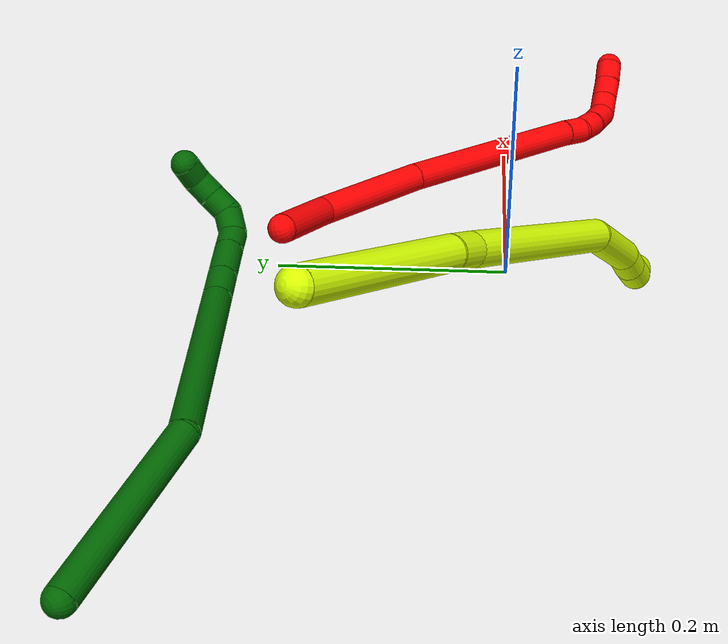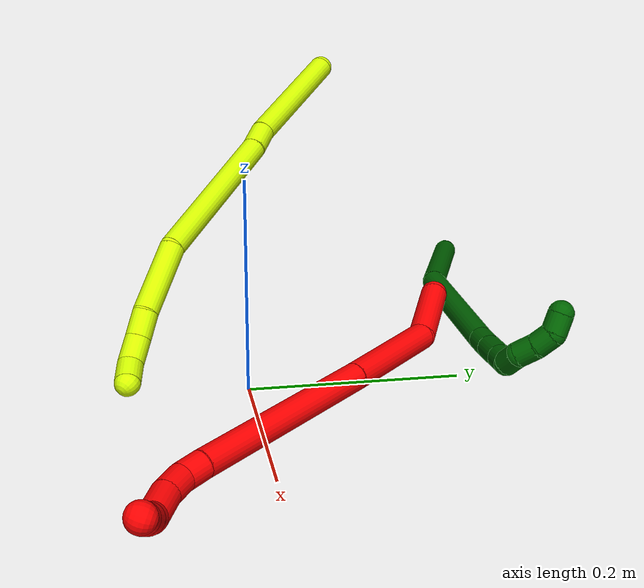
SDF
<sdf version="1.7">
 <world name="default">
  <model name="2">
   <static>0</static>
   <link name="2">
    <collision name="collision-cylinder-e_1_1_4">
     <pose>0.008838 -0.032832 -0.002916 1.65939 0.261982 0.285967</pose>
     <geometry><cylinder><radius>0.0125</radius><length>0.068251</length></cylinder></geometry>
     <surface>
      <friction><ode><mu>1.16</mu><mu2>1.16</mu2><slip1>0</slip1><slip2>0</slip2></ode></friction>
      <contact><ode><kp>1e+06</kp><kd>1</kd><max_vel>0</max_vel><min_depth>0.001</min_depth></ode></contact>
     </surface>
    </collision>
    <visual name="visual-cylinder-e_1_1_4">
     <pose>0.008838 -0.032832 -0.002916 1.65939 0.261982 0.285967</pose>
     <geometry><cylinder><radius>0.0125</radius><length>0.068251</length></cylinder></geometry>
     <material><ambient>1 0 0 1</ambient></material>
    </visual>
    <collision name="collision-cylinder-e_2_4_5">
     <pose>0.02705 -0.11004 -0.033292 2.12493 0.177726 0.317135</pose>
     <geometry><cylinder><radius>0.0125</radius><length>0.106041</length></cylinder></geometry>
     <surface>
      <friction><ode><mu>1.16</mu><mu2>1.16</mu2><slip1>0</slip1><slip2>0</slip2></ode></friction>
      <contact><ode><kp>1e+06</kp><kd>1</kd><max_vel>0</max_vel><min_depth>0.001</min_depth></ode></contact>
     </surface>
    </collision>
    <visual name="visual-cylinder-e_2_4_5">
     <pose>0.02705 -0.11004 -0.033292 2.12493 0.177726 0.317135</pose>
     <geometry><cylinder><radius>0.0125</radius><length>0.106041</length></cylinder></geometry>
     <material><ambient>1 0 0 1</ambient></material>
    </visual>
    <collision name="collision-cylinder-e_3_5_6">
     <pose>0.056845 -0.229524 -0.112738 2.17623 0.219947 0.415352</pose>
     <geometry><cylinder><radius>0.0125</radius><length>0.187197</length></cylinder></geometry>
     <surface>
      <friction><ode><mu>1.16</mu><mu2>1.16</mu2><slip1>0</slip1><slip2>0</slip2></ode></friction>
      <contact><ode><kp>1e+06</kp><kd>1</kd><max_vel>0</max_vel><min_depth>0.001</min_depth></ode></contact>
     </surface>
    </collision>
    <visual name="visual-cylinder-e_3_5_6">
     <pose>0.056845 -0.229524 -0.112738 2.17623 0.219947 0.415352</pose>
     <geometry><cylinder><radius>0.0125</radius><length>0.187197</length></cylinder></geometry>
     <material><ambient>1 0 0 1</ambient></material>
    </visual>
    <collision name="collision-cylinder-e_4_6_7">
     <pose>0.080446 -0.313109 -0.17065 2.18091 0.298237 0.561432</pose>
     <geometry><cylinder><radius>0.0125</radius><length>0.021641</length></cylinder></geometry>
     <surface>
      <friction><ode><mu>1.16</mu><mu2>1.16</mu2><slip1>0</slip1><slip2>0</slip2></ode></friction>
      <contact><ode><kp>1e+06</kp><kd>1</kd><max_vel>0</max_vel><min_depth>0.001</min_depth></ode></contact>
     </surface>
    </collision>
    <visual name="visual-cylinder-e_4_6_7">
     <pose>0.080446 -0.313109 -0.17065 2.18091 0.298237 0.561432</pose>
     <geometry><cylinder><radius>0.0125</radius><length>0.021641</length></cylinder></geometry>
     <material><ambient>1 0 0 1</ambient></material>
    </visual>
    <collision name="collision-cylinder-e_5_7_8">
     <pose>0.08543 -0.332564 -0.180397 1.90577 0.154053 0.216326</pose>
     <geometry><cylinder><radius>0.0125</radius><length>0.023528</length></cylinder></geometry>
     <surface>
      <friction><ode><mu>1.16</mu><mu2>1.16</mu2><slip1>0</slip1><slip2>0</slip2></ode></friction>
      <contact><ode><kp>1e+06</kp><kd>1</kd><max_vel>0</max_vel><min_depth>0.001</min_depth></ode></contact>
     </surface>
    </collision>
    <visual name="visual-cylinder-e_5_7_8">
     <pose>0.08543 -0.332564 -0.180397 1.90577 0.154053 0.216326</pose>
     <geometry><cylinder><radius>0.0125</radius><length>0.023528</length></cylinder></geometry>
     <material><ambient>1 0 0 1</ambient></material>
    </visual>
    <collision name="collision-cylinder-e_6_8_9">
     <pose>0.088967 -0.358737 -0.186209 1.70102 0.112509 0.128164</pose>
     <geometry><cylinder><radius>0.0125</radius><length>0.030844</length></cylinder></geometry>
     <surface>
      <friction><ode><mu>1.16</mu><mu2>1.16</mu2><slip1>0</slip1><slip2>0</slip2></ode></friction>
      <contact><ode><kp>1e+06</kp><kd>1</kd><max_vel>0</max_vel><min_depth>0.001</min_depth></ode></contact>
     </surface>
    </collision>
    <visual name="visual-cylinder-e_6_8_9">
     <pose>0.088967 -0.358737 -0.186209 1.70102 0.112509 0.128164</pose>
     <geometry><cylinder><radius>0.0125</radius><length>0.030844</length></cylinder></geometry>
     <material><ambient>1 0 0 1</ambient></material>
    </visual>
    <collision name="collision-cylinder-e_7_9_10">
     <pose>0.085577 -0.382827 -0.189351 1.69961 -0.518833 -0.586566</pose>
     <geometry><cylinder><radius>0.0125</radius><length>0.020656</length></cylinder></geometry>
     <surface>
      <friction><ode><mu>1.16</mu><mu2>1.16</mu2><slip1>0</slip1><slip2>0</slip2></ode></friction>
      <contact><ode><kp>1e+06</kp><kd>1</kd><max_vel>0</max_vel><min_depth>0.001</min_depth></ode></contact>
     </surface>
    </collision>
    <visual name="visual-cylinder-e_7_9_10">
     <pose>0.085577 -0.382827 -0.189351 1.69961 -0.518833 -0.586566</pose>
     <geometry><cylinder><radius>0.0125</radius><length>0.020656</length></cylinder></geometry>
     <material><ambient>1 0 0 1</ambient></material>
    </visual>
    <collision name="collision-cylinder-e_8_10_11">
     <pose>0.075076 -0.400347 -0.192102 1.7541 -0.55012 -0.654292</pose>
     <geometry><cylinder><radius>0.0125</radius><length>0.020582</length></cylinder></geometry>
     <surface>
      <friction><ode><mu>1.16</mu><mu2>1.16</mu2><slip1>0</slip1><slip2>0</slip2></ode></friction>
      <contact><ode><kp>1e+06</kp><kd>1</kd><max_vel>0</max_vel><min_depth>0.001</min_depth></ode></contact>
     </surface>
    </collision>
    <visual name="visual-cylinder-e_8_10_11">
     <pose>0.075076 -0.400347 -0.192102 1.7541 -0.55012 -0.654292</pose>
     <geometry><cylinder><radius>0.0125</radius><length>0.020582</length></cylinder></geometry>
     <material><ambient>1 0 0 1</ambient></material>
    </visual>
    <collision name="collision-cylinder-e_9_11_2">
     <pose>0.063657 -0.417654 -0.194781 1.6946 -0.604109 -0.678272</pose>
     <geometry><cylinder><radius>0.0125</radius><length>0.02126</length></cylinder></geometry>
     <surface>
      <friction><ode><mu>1.16</mu><mu2>1.16</mu2><slip1>0</slip1><slip2>0</slip2></ode></friction>
      <contact><ode><kp>1e+06</kp><kd>1</kd><max_vel>0</max_vel><min_depth>0.001</min_depth></ode></contact>
     </surface>
    </collision>
    <visual name="visual-cylinder-e_9_11_2">
     <pose>0.063657 -0.417654 -0.194781 1.6946 -0.604109 -0.678272</pose>
     <geometry><cylinder><radius>0.0125</radius><length>0.02126</length></cylinder></geometry>
     <material><ambient>1 0 0 1</ambient></material>
    </visual>
    <collision name="collision-sphere-2">
     <pose>0.057619 -0.426336 -0.195862 0 -0 0</pose>
     <geometry><sphere><radius>0.0125</radius></sphere></geometry>
     <surface>
      <friction><ode><mu>1.16</mu><mu2>1.16</mu2><slip1>0</slip1><slip2>0</slip2></ode></friction>
      <contact><ode><kp>1e+06</kp><kd>1</kd><max_vel>0</max_vel><min_depth>0.001</min_depth></ode></contact>
     </surface>
    </collision>
    <visual name="visual-sphere-2">
     <pose>0.057619 -0.426336 -0.195862 0 -0 0</pose>
     <geometry><sphere><radius>0.0125</radius></sphere></geometry>
     <material><ambient>1 0 0 1</ambient></material>
    </visual>
    <collision name="collision-sphere-11">
     <pose>0.069696 -0.408972 -0.193701 0 -0 0</pose>
     <geometry><sphere><radius>0.0125</radius></sphere></geometry>
     <surface>
      <friction><ode><mu>1.16</mu><mu2>1.16</mu2><slip1>0</slip1><slip2>0</slip2></ode></friction>
      <contact><ode><kp>1e+06</kp><kd>1</kd><max_vel>0</max_vel><min_depth>0.001</min_depth></ode></contact>
     </surface>
    </collision>
    <visual name="visual-sphere-11">
     <pose>0.069696 -0.408972 -0.193701 0 -0 0</pose>
     <geometry><sphere><radius>0.0125</radius></sphere></geometry>
     <material><ambient>1 0 0 1</ambient></material>
    </visual>
    <collision name="collision-sphere-10">
     <pose>0.080455 -0.391721 -0.190503 0 -0 0</pose>
     <geometry><sphere><radius>0.0125</radius></sphere></geometry>
     <surface>
      <friction><ode><mu>1.16</mu><mu2>1.16</mu2><slip1>0</slip1><slip2>0</slip2></ode></friction>
      <contact><ode><kp>1e+06</kp><kd>1</kd><max_vel>0</max_vel><min_depth>0.001</min_depth></ode></contact>
     </surface>
    </collision>
    <visual name="visual-sphere-10">
     <pose>0.080455 -0.391721 -0.190503 0 -0 0</pose>
     <geometry><sphere><radius>0.0125</radius></sphere></geometry>
     <material><ambient>1 0 0 1</ambient></material>
    </visual>
    <collision name="collision-sphere-9">
     <pose>0.090698 -0.373932 -0.188199 0 -0 0</pose>
     <geometry><sphere><radius>0.0125</radius></sphere></geometry>
     <surface>
      <friction><ode><mu>1.16</mu><mu2>1.16</mu2><slip1>0</slip1><slip2>0</slip2></ode></friction>
      <contact><ode><kp>1e+06</kp><kd>1</kd><max_vel>0</max_vel><min_depth>0.001</min_depth></ode></contact>
     </surface>
    </collision>
    <visual name="visual-sphere-9">
     <pose>0.090698 -0.373932 -0.188199 0 -0 0</pose>
     <geometry><sphere><radius>0.0125</radius></sphere></geometry>
     <material><ambient>1 0 0 1</ambient></material>
    </visual>
    <collision name="collision-sphere-4">
     <pose>0.017677 -0.065664 -0.005832 0 -0 0</pose>
     <geometry><sphere><radius>0.0125</radius></sphere></geometry>
     <surface>
      <friction><ode><mu>1.16</mu><mu2>1.16</mu2><slip1>0</slip1><slip2>0</slip2></ode></friction>
      <contact><ode><kp>1e+06</kp><kd>1</kd><max_vel>0</max_vel><min_depth>0.001</min_depth></ode></contact>
     </surface>
    </collision>
    <visual name="visual-sphere-4">
     <pose>0.017677 -0.065664 -0.005832 0 -0 0</pose>
     <geometry><sphere><radius>0.0125</radius></sphere></geometry>
     <material><ambient>1 0 0 1</ambient></material>
    </visual>
    <collision name="collision-sphere-1">
     <geometry><sphere><radius>0.0125</radius></sphere></geometry>
     <surface>
      <friction><ode><mu>1.16</mu><mu2>1.16</mu2><slip1>0</slip1><slip2>0</slip2></ode></friction>
      <contact><ode><kp>1e+06</kp><kd>1</kd><max_vel>0</max_vel><min_depth>0.001</min_depth></ode></contact>
     </surface>
    </collision>
    <visual name="visual-sphere-1">
     <geometry><sphere><radius>0.0125</radius></sphere></geometry>
     <material><ambient>1 0 0 1</ambient></material>
    </visual>
    <collision name="collision-sphere-8">
     <pose>0.087235 -0.343543 -0.184219 0 -0 0</pose>
     <geometry><sphere><radius>0.0125</radius></sphere></geometry>
     <surface>
      <friction><ode><mu>1.16</mu><mu2>1.16</mu2><slip1>0</slip1><slip2>0</slip2></ode></friction>
      <contact><ode><kp>1e+06</kp><kd>1</kd><max_vel>0</max_vel><min_depth>0.001</min_depth></ode></contact>
     </surface>
    </collision>
    <visual name="visual-sphere-8">
     <pose>0.087235 -0.343543 -0.184219 0 -0 0</pose>
     <geometry><sphere><radius>0.0125</radius></sphere></geometry>
     <material><ambient>1 0 0 1</ambient></material>
    </visual>
    <collision name="collision-sphere-5">
     <pose>0.036424 -0.154416 -0.060753 0 -0 0</pose>
     <geometry><sphere><radius>0.0125</radius></sphere></geometry>
     <surface>
      <friction><ode><mu>1.16</mu><mu2>1.16</mu2><slip1>0</slip1><slip2>0</slip2></ode></friction>
      <contact><ode><kp>1e+06</kp><kd>1</kd><max_vel>0</max_vel><min_depth>0.001</min_depth></ode></contact>
     </surface>
    </collision>
    <visual name="visual-sphere-5">
     <pose>0.036424 -0.154416 -0.060753 0 -0 0</pose>
     <geometry><sphere><radius>0.0125</radius></sphere></geometry>
     <material><ambient>1 0 0 1</ambient></material>
    </visual>
    <collision name="collision-sphere-6">
     <pose>0.077266 -0.304632 -0.164724 0 -0 0</pose>
     <geometry><sphere><radius>0.0125</radius></sphere></geometry>
     <surface>
      <friction><ode><mu>1.16</mu><mu2>1.16</mu2><slip1>0</slip1><slip2>0</slip2></ode></friction>
      <contact><ode><kp>1e+06</kp><kd>1</kd><max_vel>0</max_vel><min_depth>0.001</min_depth></ode></contact>
     </surface>
    </collision>
    <visual name="visual-sphere-6">
     <pose>0.077266 -0.304632 -0.164724 0 -0 0</pose>
     <geometry><sphere><radius>0.0125</radius></sphere></geometry>
     <material><ambient>1 0 0 1</ambient></material>
    </visual>
    <collision name="collision-sphere-7">
     <pose>0.083625 -0.321585 -0.176575 0 -0 0</pose>
     <geometry><sphere><radius>0.0125</radius></sphere></geometry>
     <surface>
      <friction><ode><mu>1.16</mu><mu2>1.16</mu2><slip1>0</slip1><slip2>0</slip2></ode></friction>
      <contact><ode><kp>1e+06</kp><kd>1</kd><max_vel>0</max_vel><min_depth>0.001</min_depth></ode></contact>
     </surface>
    </collision>
    <visual name="visual-sphere-7">
     <pose>0.083625 -0.321585 -0.176575 0 -0 0</pose>
     <geometry><sphere><radius>0.0125</radius></sphere></geometry>
     <material><ambient>1 0 0 1</ambient></material>
    </visual>
    <inertial>
     <pose>0.050548 -0.215136 -0.101041 0 -0 0</pose>
     <mass>0.5</mass>
     <inertia>
      <ixx>0.00089</ixx>
      <ixy>0</ixy>
      <ixz>0</ixz>
      <iyy>-7.2e-05</iyy>
      <iyz>0</iyz>
      <izz>0.000409</izz>
     </inertia>
    </inertial>
   </link>
   <pose>-0.043234 0.187113 0.069082 2.86828 1.2116 -2.06179</pose>
  </model>
  <model name="6">
   <static>0</static>
   <link name="6">
    <collision name="collision-cylinder-e_1_1_4">
     <pose>0.024496 0.015455 -0.074023 -2.93577 0.313265 -1.98329</pose>
     <geometry><cylinder><radius>0.0125</radius><length>0.158976</length></cylinder></geometry>
     <surface>
      <friction><ode><mu>1.16</mu><mu2>1.16</mu2><slip1>0</slip1><slip2>0</slip2></ode></friction>
      <contact><ode><kp>1e+06</kp><kd>1</kd><max_vel>0</max_vel><min_depth>0.001</min_depth></ode></contact>
     </surface>
    </collision>
    <visual name="visual-cylinder-e_1_1_4">
     <pose>0.024496 0.015455 -0.074023 -2.93577 0.313265 -1.98329</pose>
     <geometry><cylinder><radius>0.0125</radius><length>0.158976</length></cylinder></geometry>
     <material><ambient>0 0.392157 0.003922 1</ambient></material>
    </visual>
    <collision name="collision-cylinder-e_2_4_5">
     <pose>0.077695 0.077452 -0.214966 -2.53389 0.338586 -0.998176</pose>
     <geometry><cylinder><radius>0.0125</radius><length>0.172839</length></cylinder></geometry>
     <surface>
      <friction><ode><mu>1.16</mu><mu2>1.16</mu2><slip1>0</slip1><slip2>0</slip2></ode></friction>
      <contact><ode><kp>1e+06</kp><kd>1</kd><max_vel>0</max_vel><min_depth>0.001</min_depth></ode></contact>
     </surface>
    </collision>
    <visual name="visual-cylinder-e_2_4_5">
     <pose>0.077695 0.077452 -0.214966 -2.53389 0.338586 -0.998176</pose>
     <geometry><cylinder><radius>0.0125</radius><length>0.172839</length></cylinder></geometry>
     <material><ambient>0 0.392157 0.003922 1</ambient></material>
    </visual>
    <collision name="collision-cylinder-e_3_5_6">
     <pose>0.11231 0.130946 -0.293084 -2.58606 0.421464 -1.28725</pose>
     <geometry><cylinder><radius>0.0125</radius><length>0.028891</length></cylinder></geometry>
     <surface>
      <friction><ode><mu>1.16</mu><mu2>1.16</mu2><slip1>0</slip1><slip2>0</slip2></ode></friction>
      <contact><ode><kp>1e+06</kp><kd>1</kd><max_vel>0</max_vel><min_depth>0.001</min_depth></ode></contact>
     </surface>
    </collision>
    <visual name="visual-cylinder-e_3_5_6">
     <pose>0.11231 0.130946 -0.293084 -2.58606 0.421464 -1.28725</pose>
     <geometry><cylinder><radius>0.0125</radius><length>0.028891</length></cylinder></geometry>
     <material><ambient>0 0.392157 0.003922 1</ambient></material>
    </visual>
    <collision name="collision-cylinder-e_4_6_7">
     <pose>0.126043 0.146024 -0.31814 -2.61125 0.45325 -1.40793</pose>
     <geometry><cylinder><radius>0.0125</radius><length>0.035736</length></cylinder></geometry>
     <surface>
      <friction><ode><mu>1.16</mu><mu2>1.16</mu2><slip1>0</slip1><slip2>0</slip2></ode></friction>
      <contact><ode><kp>1e+06</kp><kd>1</kd><max_vel>0</max_vel><min_depth>0.001</min_depth></ode></contact>
     </surface>
    </collision>
    <visual name="visual-cylinder-e_4_6_7">
     <pose>0.126043 0.146024 -0.31814 -2.61125 0.45325 -1.40793</pose>
     <geometry><cylinder><radius>0.0125</radius><length>0.035736</length></cylinder></geometry>
     <material><ambient>0 0.392157 0.003922 1</ambient></material>
    </visual>
    <collision name="collision-cylinder-e_5_7_8">
     <pose>0.138763 0.158969 -0.340637 -2.63273 0.459461 -1.46477</pose>
     <geometry><cylinder><radius>0.0125</radius><length>0.022077</length></cylinder></geometry>
     <surface>
      <friction><ode><mu>1.16</mu><mu2>1.16</mu2><slip1>0</slip1><slip2>0</slip2></ode></friction>
      <contact><ode><kp>1e+06</kp><kd>1</kd><max_vel>0</max_vel><min_depth>0.001</min_depth></ode></contact>
     </surface>
    </collision>
    <visual name="visual-cylinder-e_5_7_8">
     <pose>0.138763 0.158969 -0.340637 -2.63273 0.459461 -1.46477</pose>
     <geometry><cylinder><radius>0.0125</radius><length>0.022077</length></cylinder></geometry>
     <material><ambient>0 0.392157 0.003922 1</ambient></material>
    </visual>
    <collision name="collision-cylinder-e_6_8_9">
     <pose>0.153257 0.167097 -0.352489 -2.34146 1.12312 -1.95801</pose>
     <geometry><cylinder><radius>0.0125</radius><length>0.021298</length></cylinder></geometry>
     <surface>
      <friction><ode><mu>1.16</mu><mu2>1.16</mu2><slip1>0</slip1><slip2>0</slip2></ode></friction>
      <contact><ode><kp>1e+06</kp><kd>1</kd><max_vel>0</max_vel><min_depth>0.001</min_depth></ode></contact>
     </surface>
    </collision>
    <visual name="visual-cylinder-e_6_8_9">
     <pose>0.153257 0.167097 -0.352489 -2.34146 1.12312 -1.95801</pose>
     <geometry><cylinder><radius>0.0125</radius><length>0.021298</length></cylinder></geometry>
     <material><ambient>0 0.392157 0.003922 1</ambient></material>
    </visual>
    <collision name="collision-cylinder-e_7_9_10">
     <pose>0.171053 0.175904 -0.353912 -1.25663 0.956256 -0.720196</pose>
     <geometry><cylinder><radius>0.0125</radius><length>0.020062</length></cylinder></geometry>
     <surface>
      <friction><ode><mu>1.16</mu><mu2>1.16</mu2><slip1>0</slip1><slip2>0</slip2></ode></friction>
      <contact><ode><kp>1e+06</kp><kd>1</kd><max_vel>0</max_vel><min_depth>0.001</min_depth></ode></contact>
     </surface>
    </collision>
    <visual name="visual-cylinder-e_7_9_10">
     <pose>0.171053 0.175904 -0.353912 -1.25663 0.956256 -0.720196</pose>
     <geometry><cylinder><radius>0.0125</radius><length>0.020062</length></cylinder></geometry>
     <material><ambient>0 0.392157 0.003922 1</ambient></material>
    </visual>
    <collision name="collision-cylinder-e_8_10_11">
     <pose>0.187953 0.185462 -0.349217 -0.948863 1.05014 -0.578341</pose>
     <geometry><cylinder><radius>0.0125</radius><length>0.02007</length></cylinder></geometry>
     <surface>
      <friction><ode><mu>1.16</mu><mu2>1.16</mu2><slip1>0</slip1><slip2>0</slip2></ode></friction>
      <contact><ode><kp>1e+06</kp><kd>1</kd><max_vel>0</max_vel><min_depth>0.001</min_depth></ode></contact>
     </surface>
    </collision>
    <visual name="visual-cylinder-e_8_10_11">
     <pose>0.187953 0.185462 -0.349217 -0.948863 1.05014 -0.578341</pose>
     <geometry><cylinder><radius>0.0125</radius><length>0.02007</length></cylinder></geometry>
     <material><ambient>0 0.392157 0.003922 1</ambient></material>
    </visual>
    <collision name="collision-cylinder-e_9_11_2">
     <pose>0.205037 0.187813 -0.341073 0.314977 0.98942 0.170917</pose>
     <geometry><cylinder><radius>0.0125</radius><length>0.020052</length></cylinder></geometry>
     <surface>
      <friction><ode><mu>1.16</mu><mu2>1.16</mu2><slip1>0</slip1><slip2>0</slip2></ode></friction>
      <contact><ode><kp>1e+06</kp><kd>1</kd><max_vel>0</max_vel><min_depth>0.001</min_depth></ode></contact>
     </surface>
    </collision>
    <visual name="visual-cylinder-e_9_11_2">
     <pose>0.205037 0.187813 -0.341073 0.314977 0.98942 0.170917</pose>
     <geometry><cylinder><radius>0.0125</radius><length>0.020052</length></cylinder></geometry>
     <material><ambient>0 0.392157 0.003922 1</ambient></material>
    </visual>
    <collision name="collision-sphere-2">
     <pose>0.213416 0.186107 -0.335838 0 -0 0</pose>
     <geometry><sphere><radius>0.0125</radius></sphere></geometry>
     <surface>
      <friction><ode><mu>1.16</mu><mu2>1.16</mu2><slip1>0</slip1><slip2>0</slip2></ode></friction>
      <contact><ode><kp>1e+06</kp><kd>1</kd><max_vel>0</max_vel><min_depth>0.001</min_depth></ode></contact>
     </surface>
    </collision>
    <visual name="visual-sphere-2">
     <pose>0.213416 0.186107 -0.335838 0 -0 0</pose>
     <geometry><sphere><radius>0.0125</radius></sphere></geometry>
     <material><ambient>0 0.392157 0.003922 1</ambient></material>
    </visual>
    <collision name="collision-sphere-11">
     <pose>0.196658 0.189519 -0.346309 0 -0 0</pose>
     <geometry><sphere><radius>0.0125</radius></sphere></geometry>
     <surface>
      <friction><ode><mu>1.16</mu><mu2>1.16</mu2><slip1>0</slip1><slip2>0</slip2></ode></friction>
      <contact><ode><kp>1e+06</kp><kd>1</kd><max_vel>0</max_vel><min_depth>0.001</min_depth></ode></contact>
     </surface>
    </collision>
    <visual name="visual-sphere-11">
     <pose>0.196658 0.189519 -0.346309 0 -0 0</pose>
     <geometry><sphere><radius>0.0125</radius></sphere></geometry>
     <material><ambient>0 0.392157 0.003922 1</ambient></material>
    </visual>
    <collision name="collision-sphere-10">
     <pose>0.179248 0.181405 -0.352125 0 -0 0</pose>
     <geometry><sphere><radius>0.0125</radius></sphere></geometry>
     <surface>
      <friction><ode><mu>1.16</mu><mu2>1.16</mu2><slip1>0</slip1><slip2>0</slip2></ode></friction>
      <contact><ode><kp>1e+06</kp><kd>1</kd><max_vel>0</max_vel><min_depth>0.001</min_depth></ode></contact>
     </surface>
    </collision>
    <visual name="visual-sphere-10">
     <pose>0.179248 0.181405 -0.352125 0 -0 0</pose>
     <geometry><sphere><radius>0.0125</radius></sphere></geometry>
     <material><ambient>0 0.392157 0.003922 1</ambient></material>
    </visual>
    <collision name="collision-sphere-9">
     <pose>0.162857 0.170404 -0.3557 0 -0 0</pose>
     <geometry><sphere><radius>0.0125</radius></sphere></geometry>
     <surface>
      <friction><ode><mu>1.16</mu><mu2>1.16</mu2><slip1>0</slip1><slip2>0</slip2></ode></friction>
      <contact><ode><kp>1e+06</kp><kd>1</kd><max_vel>0</max_vel><min_depth>0.001</min_depth></ode></contact>
     </surface>
    </collision>
    <visual name="visual-sphere-9">
     <pose>0.162857 0.170404 -0.3557 0 -0 0</pose>
     <geometry><sphere><radius>0.0125</radius></sphere></geometry>
     <material><ambient>0 0.392157 0.003922 1</ambient></material>
    </visual>
    <collision name="collision-sphere-4">
     <pose>0.048991 0.030909 -0.148047 0 -0 0</pose>
     <geometry><sphere><radius>0.0125</radius></sphere></geometry>
     <surface>
      <friction><ode><mu>1.16</mu><mu2>1.16</mu2><slip1>0</slip1><slip2>0</slip2></ode></friction>
      <contact><ode><kp>1e+06</kp><kd>1</kd><max_vel>0</max_vel><min_depth>0.001</min_depth></ode></contact>
     </surface>
    </collision>
    <visual name="visual-sphere-4">
     <pose>0.048991 0.030909 -0.148047 0 -0 0</pose>
     <geometry><sphere><radius>0.0125</radius></sphere></geometry>
     <material><ambient>0 0.392157 0.003922 1</ambient></material>
    </visual>
    <collision name="collision-sphere-1">
     <geometry><sphere><radius>0.0125</radius></sphere></geometry>
     <surface>
      <friction><ode><mu>1.16</mu><mu2>1.16</mu2><slip1>0</slip1><slip2>0</slip2></ode></friction>
      <contact><ode><kp>1e+06</kp><kd>1</kd><max_vel>0</max_vel><min_depth>0.001</min_depth></ode></contact>
     </surface>
    </collision>
    <visual name="visual-sphere-1">
     <geometry><sphere><radius>0.0125</radius></sphere></geometry>
     <material><ambient>0 0.392157 0.003922 1</ambient></material>
    </visual>
    <collision name="collision-sphere-8">
     <pose>0.143658 0.16379 -0.349278 0 -0 0</pose>
     <geometry><sphere><radius>0.0125</radius></sphere></geometry>
     <surface>
      <friction><ode><mu>1.16</mu><mu2>1.16</mu2><slip1>0</slip1><slip2>0</slip2></ode></friction>
      <contact><ode><kp>1e+06</kp><kd>1</kd><max_vel>0</max_vel><min_depth>0.001</min_depth></ode></contact>
     </surface>
    </collision>
    <visual name="visual-sphere-8">
     <pose>0.143658 0.16379 -0.349278 0 -0 0</pose>
     <geometry><sphere><radius>0.0125</radius></sphere></geometry>
     <material><ambient>0 0.392157 0.003922 1</ambient></material>
    </visual>
    <collision name="collision-sphere-5">
     <pose>0.1064 0.123995 -0.281885 0 -0 0</pose>
     <geometry><sphere><radius>0.0125</radius></sphere></geometry>
     <surface>
      <friction><ode><mu>1.16</mu><mu2>1.16</mu2><slip1>0</slip1><slip2>0</slip2></ode></friction>
      <contact><ode><kp>1e+06</kp><kd>1</kd><max_vel>0</max_vel><min_depth>0.001</min_depth></ode></contact>
     </surface>
    </collision>
    <visual name="visual-sphere-5">
     <pose>0.1064 0.123995 -0.281885 0 -0 0</pose>
     <geometry><sphere><radius>0.0125</radius></sphere></geometry>
     <material><ambient>0 0.392157 0.003922 1</ambient></material>
    </visual>
    <collision name="collision-sphere-6">
     <pose>0.118219 0.137898 -0.304283 0 -0 0</pose>
     <geometry><sphere><radius>0.0125</radius></sphere></geometry>
     <surface>
      <friction><ode><mu>1.16</mu><mu2>1.16</mu2><slip1>0</slip1><slip2>0</slip2></ode></friction>
      <contact><ode><kp>1e+06</kp><kd>1</kd><max_vel>0</max_vel><min_depth>0.001</min_depth></ode></contact>
     </surface>
    </collision>
    <visual name="visual-sphere-6">
     <pose>0.118219 0.137898 -0.304283 0 -0 0</pose>
     <geometry><sphere><radius>0.0125</radius></sphere></geometry>
     <material><ambient>0 0.392157 0.003922 1</ambient></material>
    </visual>
    <collision name="collision-sphere-7">
     <pose>0.133868 0.154149 -0.331997 0 -0 0</pose>
     <geometry><sphere><radius>0.0125</radius></sphere></geometry>
     <surface>
      <friction><ode><mu>1.16</mu><mu2>1.16</mu2><slip1>0</slip1><slip2>0</slip2></ode></friction>
      <contact><ode><kp>1e+06</kp><kd>1</kd><max_vel>0</max_vel><min_depth>0.001</min_depth></ode></contact>
     </surface>
    </collision>
    <visual name="visual-sphere-7">
     <pose>0.133868 0.154149 -0.331997 0 -0 0</pose>
     <geometry><sphere><radius>0.0125</radius></sphere></geometry>
     <material><ambient>0 0.392157 0.003922 1</ambient></material>
    </visual>
    <inertial>
     <pose>0.085429 0.085861 -0.209469 0 -0 0</pose>
     <mass>0.5</mass>
     <inertia>
      <ixx>-0.000541</ixx>
      <ixy>0</ixy>
      <ixz>0</ixz>
      <iyy>-0.000605</iyy>
      <iyz>0</iyz>
      <izz>-0.000594</izz>
     </inertia>
    </inertial>
   </link>
   <pose>-0.387845 0.288062 0.011498 -1.21687 -1.10938 0.607845</pose>
  </model>
  <model name="15">
   <static>0</static>
   <link name="15">
    <collision name="collision-cylinder-e_1_1_4">
     <pose>-0.001616 -0.011018 -0.072284 2.99033 -0.022101 -0.289634</pose>
     <geometry><cylinder><radius>0.0125</radius><length>0.146273</length></cylinder></geometry>
     <surface>
      <friction><ode><mu>1.16</mu><mu2>1.16</mu2><slip1>0</slip1><slip2>0</slip2></ode></friction>
      <contact><ode><kp>1e+06</kp><kd>1</kd><max_vel>0</max_vel><min_depth>0.001</min_depth></ode></contact>
     </surface>
    </collision>
    <visual name="visual-cylinder-e_1_1_4">
     <pose>-0.001616 -0.011018 -0.072284 2.99033 -0.022101 -0.289634</pose>
     <geometry><cylinder><radius>0.0125</radius><length>0.146273</length></cylinder></geometry>
     <material><ambient>0.835294 1 0 1</ambient></material>
    </visual>
    <collision name="collision-cylinder-e_2_4_5">
     <pose>-0.00116 -0.024223 -0.158925 2.99047 0.141724 1.50641</pose>
     <geometry><cylinder><radius>0.0125</radius><length>0.02934</length></cylinder></geometry>
     <surface>
      <friction><ode><mu>1.16</mu><mu2>1.16</mu2><slip1>0</slip1><slip2>0</slip2></ode></friction>
      <contact><ode><kp>1e+06</kp><kd>1</kd><max_vel>0</max_vel><min_depth>0.001</min_depth></ode></contact>
     </surface>
    </collision>
    <visual name="visual-cylinder-e_2_4_5">
     <pose>-0.00116 -0.024223 -0.158925 2.99047 0.141724 1.50641</pose>
     <geometry><cylinder><radius>0.0125</radius><length>0.02934</length></cylinder></geometry>
     <material><ambient>0.835294 1 0 1</ambient></material>
    </visual>
    <collision name="collision-cylinder-e_3_5_6">
     <pose>0.001336 -0.03509 -0.258855 3.04049 0.004931 0.097389</pose>
     <geometry><cylinder><radius>0.0125</radius><length>0.172026</length></cylinder></geometry>
     <surface>
      <friction><ode><mu>1.16</mu><mu2>1.16</mu2><slip1>0</slip1><slip2>0</slip2></ode></friction>
      <contact><ode><kp>1e+06</kp><kd>1</kd><max_vel>0</max_vel><min_depth>0.001</min_depth></ode></contact>
     </surface>
    </collision>
    <visual name="visual-cylinder-e_3_5_6">
     <pose>0.001336 -0.03509 -0.258855 3.04049 0.004931 0.097389</pose>
     <geometry><cylinder><radius>0.0125</radius><length>0.172026</length></cylinder></geometry>
     <material><ambient>0.835294 1 0 1</ambient></material>
    </visual>
    <collision name="collision-cylinder-e_4_6_7">
     <pose>0.011049 -0.040006 -0.380318 -3.03705 0.251942 -2.35807</pose>
     <geometry><cylinder><radius>0.0125</radius><length>0.074527</length></cylinder></geometry>
     <surface>
      <friction><ode><mu>1.16</mu><mu2>1.16</mu2><slip1>0</slip1><slip2>0</slip2></ode></friction>
      <contact><ode><kp>1e+06</kp><kd>1</kd><max_vel>0</max_vel><min_depth>0.001</min_depth></ode></contact>
     </surface>
    </collision>
    <visual name="visual-cylinder-e_4_6_7">
     <pose>0.011049 -0.040006 -0.380318 -3.03705 0.251942 -2.35807</pose>
     <geometry><cylinder><radius>0.0125</radius><length>0.074527</length></cylinder></geometry>
     <material><ambient>0.835294 1 0 1</ambient></material>
    </visual>
    <collision name="collision-cylinder-e_5_7_8">
     <pose>0.02501 -0.03316 -0.428078 -2.88773 0.363937 -1.9288</pose>
     <geometry><cylinder><radius>0.0125</radius><length>0.026245</length></cylinder></geometry>
     <surface>
      <friction><ode><mu>1.16</mu><mu2>1.16</mu2><slip1>0</slip1><slip2>0</slip2></ode></friction>
      <contact><ode><kp>1e+06</kp><kd>1</kd><max_vel>0</max_vel><min_depth>0.001</min_depth></ode></contact>
     </surface>
    </collision>
    <visual name="visual-cylinder-e_5_7_8">
     <pose>0.02501 -0.03316 -0.428078 -2.88773 0.363937 -1.9288</pose>
     <geometry><cylinder><radius>0.0125</radius><length>0.026245</length></cylinder></geometry>
     <material><ambient>0.835294 1 0 1</ambient></material>
    </visual>
    <collision name="collision-cylinder-e_6_8_9">
     <pose>0.034186 -0.027934 -0.452082 -2.96654 0.350557 -2.22152</pose>
     <geometry><cylinder><radius>0.0125</radius><length>0.02624</length></cylinder></geometry>
     <surface>
      <friction><ode><mu>1.16</mu><mu2>1.16</mu2><slip1>0</slip1><slip2>0</slip2></ode></friction>
      <contact><ode><kp>1e+06</kp><kd>1</kd><max_vel>0</max_vel><min_depth>0.001</min_depth></ode></contact>
     </surface>
    </collision>
    <visual name="visual-cylinder-e_6_8_9">
     <pose>0.034186 -0.027934 -0.452082 -2.96654 0.350557 -2.22152</pose>
     <geometry><cylinder><radius>0.0125</radius><length>0.02624</length></cylinder></geometry>
     <material><ambient>0.835294 1 0 1</ambient></material>
    </visual>
    <collision name="collision-cylinder-e_7_9_2">
     <pose>0.043239 -0.030082 -0.47524 2.77024 0.366938 1.55856</pose>
     <geometry><cylinder><radius>0.0125</radius><length>0.025349</length></cylinder></geometry>
     <surface>
      <friction><ode><mu>1.16</mu><mu2>1.16</mu2><slip1>0</slip1><slip2>0</slip2></ode></friction>
      <contact><ode><kp>1e+06</kp><kd>1</kd><max_vel>0</max_vel><min_depth>0.001</min_depth></ode></contact>
     </surface>
    </collision>
    <visual name="visual-cylinder-e_7_9_2">
     <pose>0.043239 -0.030082 -0.47524 2.77024 0.366938 1.55856</pose>
     <geometry><cylinder><radius>0.0125</radius><length>0.025349</length></cylinder></geometry>
     <material><ambient>0.835294 1 0 1</ambient></material>
    </visual>
    <collision name="collision-sphere-2">
     <pose>0.047786 -0.034375 -0.486264 0 -0 0</pose>
     <geometry><sphere><radius>0.0125</radius></sphere></geometry>
     <surface>
      <friction><ode><mu>1.16</mu><mu2>1.16</mu2><slip1>0</slip1><slip2>0</slip2></ode></friction>
      <contact><ode><kp>1e+06</kp><kd>1</kd><max_vel>0</max_vel><min_depth>0.001</min_depth></ode></contact>
     </surface>
    </collision>
    <visual name="visual-sphere-2">
     <pose>0.047786 -0.034375 -0.486264 0 -0 0</pose>
     <geometry><sphere><radius>0.0125</radius></sphere></geometry>
     <material><ambient>0.835294 1 0 1</ambient></material>
    </visual>
    <collision name="collision-sphere-9">
     <pose>0.038692 -0.025788 -0.464216 0 -0 0</pose>
     <geometry><sphere><radius>0.0125</radius></sphere></geometry>
     <surface>
      <friction><ode><mu>1.16</mu><mu2>1.16</mu2><slip1>0</slip1><slip2>0</slip2></ode></friction>
      <contact><ode><kp>1e+06</kp><kd>1</kd><max_vel>0</max_vel><min_depth>0.001</min_depth></ode></contact>
     </surface>
    </collision>
    <visual name="visual-sphere-9">
     <pose>0.038692 -0.025788 -0.464216 0 -0 0</pose>
     <geometry><sphere><radius>0.0125</radius></sphere></geometry>
     <material><ambient>0.835294 1 0 1</ambient></material>
    </visual>
    <collision name="collision-sphere-4">
     <pose>-0.003233 -0.022036 -0.144568 0 -0 0</pose>
     <geometry><sphere><radius>0.0125</radius></sphere></geometry>
     <surface>
      <friction><ode><mu>1.16</mu><mu2>1.16</mu2><slip1>0</slip1><slip2>0</slip2></ode></friction>
      <contact><ode><kp>1e+06</kp><kd>1</kd><max_vel>0</max_vel><min_depth>0.001</min_depth></ode></contact>
     </surface>
    </collision>
    <visual name="visual-sphere-4">
     <pose>-0.003233 -0.022036 -0.144568 0 -0 0</pose>
     <geometry><sphere><radius>0.0125</radius></sphere></geometry>
     <material><ambient>0.835294 1 0 1</ambient></material>
    </visual>
    <collision name="collision-sphere-1">
     <geometry><sphere><radius>0.0125</radius></sphere></geometry>
     <surface>
      <friction><ode><mu>1.16</mu><mu2>1.16</mu2><slip1>0</slip1><slip2>0</slip2></ode></friction>
      <contact><ode><kp>1e+06</kp><kd>1</kd><max_vel>0</max_vel><min_depth>0.001</min_depth></ode></contact>
     </surface>
    </collision>
    <visual name="visual-sphere-1">
     <geometry><sphere><radius>0.0125</radius></sphere></geometry>
     <material><ambient>0.835294 1 0 1</ambient></material>
    </visual>
    <collision name="collision-sphere-8">
     <pose>0.029681 -0.03008 -0.439948 0 -0 0</pose>
     <geometry><sphere><radius>0.0125</radius></sphere></geometry>
     <surface>
      <friction><ode><mu>1.16</mu><mu2>1.16</mu2><slip1>0</slip1><slip2>0</slip2></ode></friction>
      <contact><ode><kp>1e+06</kp><kd>1</kd><max_vel>0</max_vel><min_depth>0.001</min_depth></ode></contact>
     </surface>
    </collision>
    <visual name="visual-sphere-8">
     <pose>0.029681 -0.03008 -0.439948 0 -0 0</pose>
     <geometry><sphere><radius>0.0125</radius></sphere></geometry>
     <material><ambient>0.835294 1 0 1</ambient></material>
    </visual>
    <collision name="collision-sphere-5">
     <pose>0.000912 -0.026409 -0.173282 0 -0 0</pose>
     <geometry><sphere><radius>0.0125</radius></sphere></geometry>
     <surface>
      <friction><ode><mu>1.16</mu><mu2>1.16</mu2><slip1>0</slip1><slip2>0</slip2></ode></friction>
      <contact><ode><kp>1e+06</kp><kd>1</kd><max_vel>0</max_vel><min_depth>0.001</min_depth></ode></contact>
     </surface>
    </collision>
    <visual name="visual-sphere-5">
     <pose>0.000912 -0.026409 -0.173282 0 -0 0</pose>
     <geometry><sphere><radius>0.0125</radius></sphere></geometry>
     <material><ambient>0.835294 1 0 1</ambient></material>
    </visual>
    <collision name="collision-sphere-6">
     <pose>0.00176 -0.043771 -0.344428 0 -0 0</pose>
     <geometry><sphere><radius>0.0125</radius></sphere></geometry>
     <surface>
      <friction><ode><mu>1.16</mu><mu2>1.16</mu2><slip1>0</slip1><slip2>0</slip2></ode></friction>
      <contact><ode><kp>1e+06</kp><kd>1</kd><max_vel>0</max_vel><min_depth>0.001</min_depth></ode></contact>
     </surface>
    </collision>
    <visual name="visual-sphere-6">
     <pose>0.00176 -0.043771 -0.344428 0 -0 0</pose>
     <geometry><sphere><radius>0.0125</radius></sphere></geometry>
     <material><ambient>0.835294 1 0 1</ambient></material>
    </visual>
    <collision name="collision-sphere-7">
     <pose>0.020339 -0.03624 -0.416208 0 -0 0</pose>
     <geometry><sphere><radius>0.0125</radius></sphere></geometry>
     <surface>
      <friction><ode><mu>1.16</mu><mu2>1.16</mu2><slip1>0</slip1><slip2>0</slip2></ode></friction>
      <contact><ode><kp>1e+06</kp><kd>1</kd><max_vel>0</max_vel><min_depth>0.001</min_depth></ode></contact>
     </surface>
    </collision>
    <visual name="visual-sphere-7">
     <pose>0.020339 -0.03624 -0.416208 0 -0 0</pose>
     <geometry><sphere><radius>0.0125</radius></sphere></geometry>
     <material><ambient>0.835294 1 0 1</ambient></material>
    </visual>
    <inertial>
     <pose>0.006865 -0.027412 -0.246508 0 -0 0</pose>
     <mass>0.5</mass>
     <inertia>
      <ixx>0.000602</ixx>
      <ixy>0</ixy>
      <ixz>0</ixz>
      <iyy>-0.00071</iyy>
      <iyz>0</iyz>
      <izz>3.4e-05</izz>
     </inertia>
    </inertial>
   </link>
   <pose>-0.360794 0.128278 0.246984 -0.953553 0.614303 1.23055</pose>
  </model>
 </world>
</sdf>
